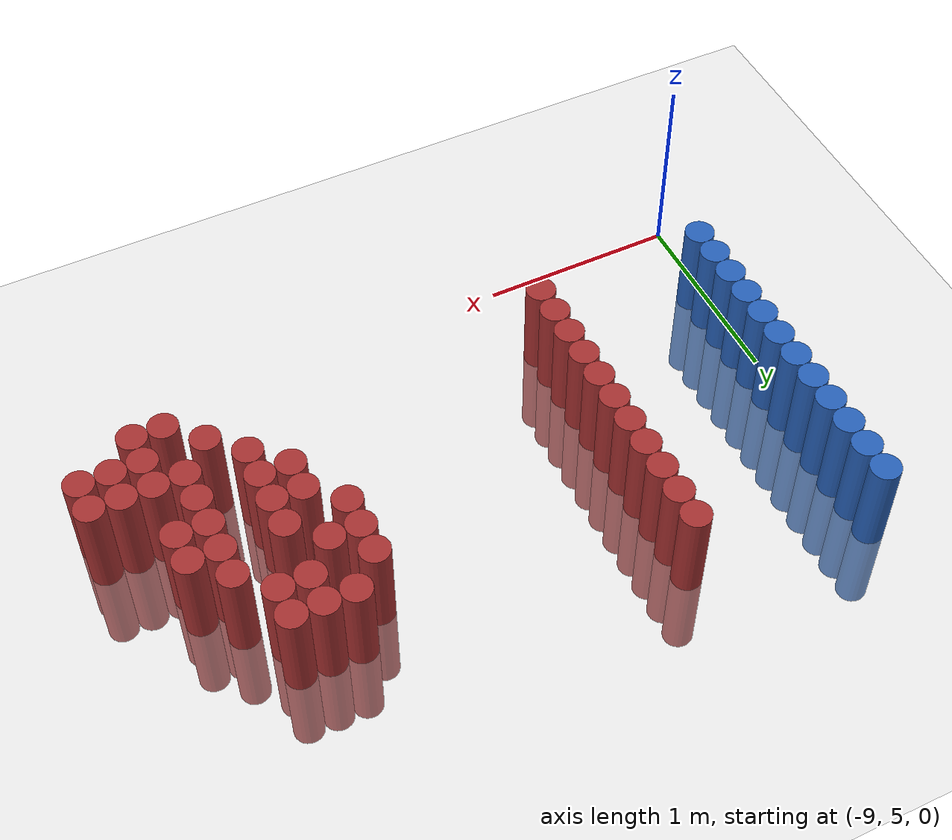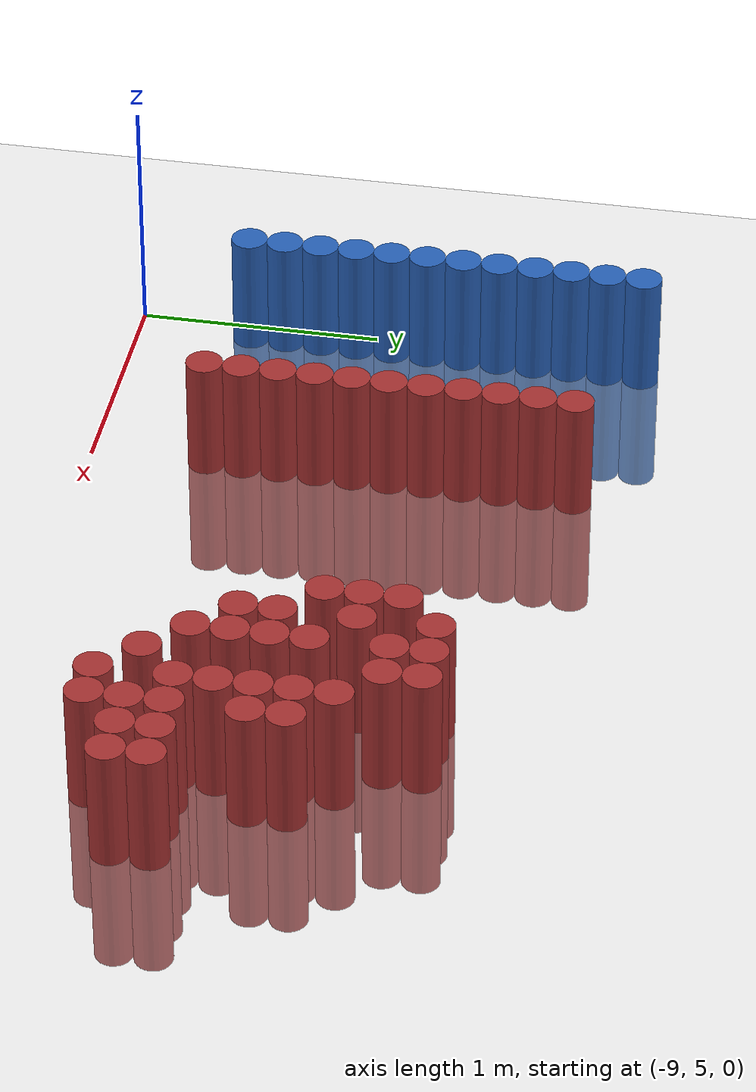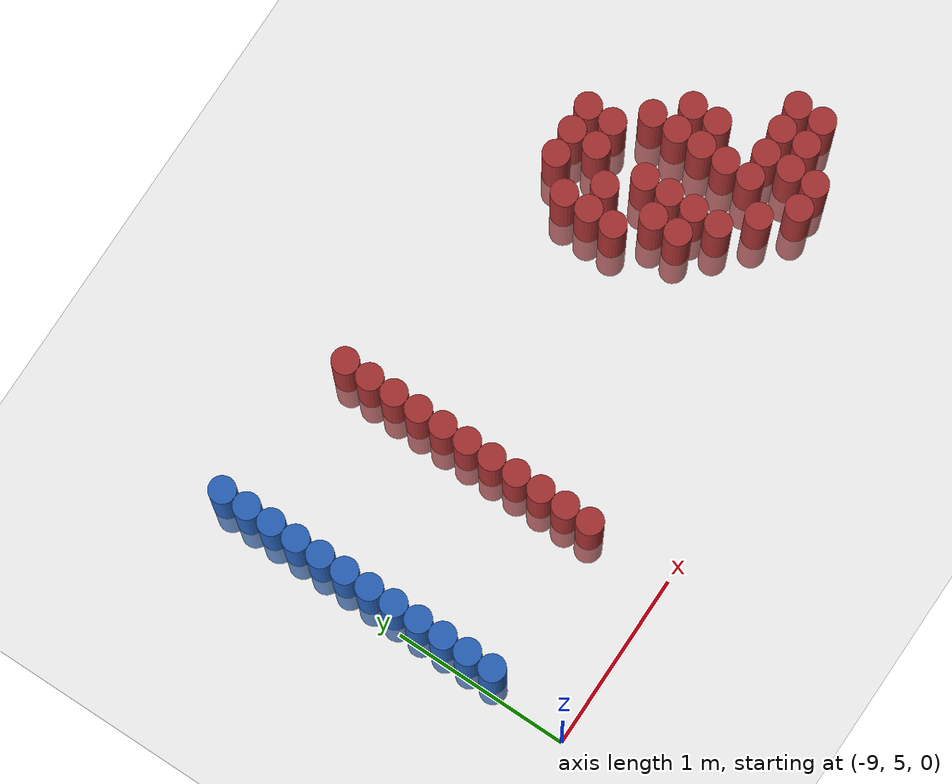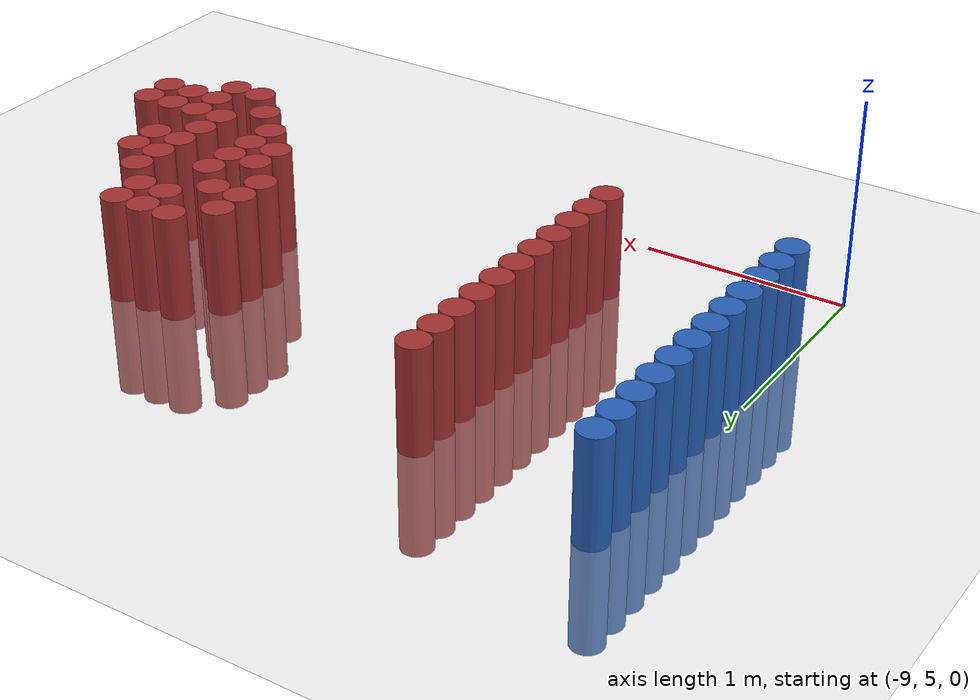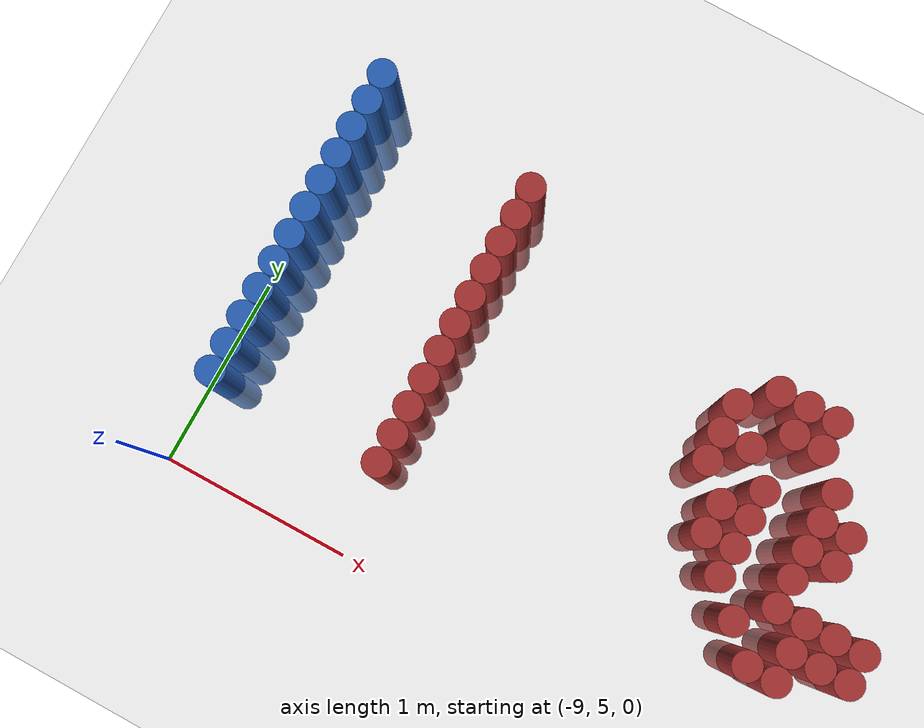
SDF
<sdf version="1.6">
 <world name="default">
  <model name="ground_plane">
   <static>1</static>
   <link name="link">
    <collision name="collision">
     <geometry><plane><normal>0 0 1</normal><size>100 100</size></plane></geometry>
     <surface><friction><ode><mu>100</mu><mu2>50</mu2></ode></friction></surface>
    </collision>
    <visual name="visual">
     <cast_shadows>0</cast_shadows>
     <geometry><plane><normal>0 0 1</normal><size>100 100</size></plane></geometry>
     <material>
      <script><uri>file://media/materials/scripts/gazebo.material</uri><name>Gazebo/Grey</name></script>
     </material>
    </visual>
   </link>
  </model>
  <model name="unit_cylinder_127">
   <static>1</static>
   <pose>-8.925000 5.475000 0.000000 0.000000 0.000000 0.000000</pose>
   <link name="link">
    <inertial>
     <mass>1</mass>
     <inertia><ixx>0.145833</ixx><ixy>0</ixy><ixz>0</ixz><iyy>0.145833</iyy><iyz>0</iyz><izz>0.125</izz></inertia>
    </inertial>
    <collision name="collision">
     <geometry><cylinder><radius>0.075000</radius><length>1</length></cylinder></geometry>
    </collision>
    <visual name="visual">
     <geometry><cylinder><radius>0.075000</radius><length>1</length></cylinder></geometry>
     <material>
      <ambient>0.152000 0.379000 0.720000 1</ambient>
      <diffuse>0.152000 0.379000 0.720000 1</diffuse>
     </material>
     <material>
      <script><name>Gazebo/Grey</name><uri>file://media/materials/scripts/gazebo.material</uri></script>
     </material>
    </visual>
   </link>
  </model>
  <model name="unit_cylinder_128">
   <static>1</static>
   <pose>-8.925000 5.625000 0.000000 0.000000 0.000000 0.000000</pose>
   <link name="link">
    <inertial>
     <mass>1</mass>
     <inertia><ixx>0.145833</ixx><ixy>0</ixy><ixz>0</ixz><iyy>0.145833</iyy><iyz>0</iyz><izz>0.125</izz></inertia>
    </inertial>
    <collision name="collision">
     <geometry><cylinder><radius>0.075000</radius><length>1</length></cylinder></geometry>
    </collision>
    <visual name="visual">
     <geometry><cylinder><radius>0.075000</radius><length>1</length></cylinder></geometry>
     <material>
      <ambient>0.152000 0.379000 0.720000 1</ambient>
      <diffuse>0.152000 0.379000 0.720000 1</diffuse>
     </material>
     <material>
      <script><name>Gazebo/Grey</name><uri>file://media/materials/scripts/gazebo.material</uri></script>
     </material>
    </visual>
   </link>
  </model>
  <model name="unit_cylinder_129">
   <static>1</static>
   <pose>-8.925000 5.775000 0.000000 0.000000 0.000000 0.000000</pose>
   <link name="link">
    <inertial>
     <mass>1</mass>
     <inertia><ixx>0.145833</ixx><ixy>0</ixy><ixz>0</ixz><iyy>0.145833</iyy><iyz>0</iyz><izz>0.125</izz></inertia>
    </inertial>
    <collision name="collision">
     <geometry><cylinder><radius>0.075000</radius><length>1</length></cylinder></geometry>
    </collision>
    <visual name="visual">
     <geometry><cylinder><radius>0.075000</radius><length>1</length></cylinder></geometry>
     <material>
      <ambient>0.152000 0.379000 0.720000 1</ambient>
      <diffuse>0.152000 0.379000 0.720000 1</diffuse>
     </material>
     <material>
      <script><name>Gazebo/Grey</name><uri>file://media/materials/scripts/gazebo.material</uri></script>
     </material>
    </visual>
   </link>
  </model>
  <model name="unit_cylinder_130">
   <static>1</static>
   <pose>-8.925000 5.925000 0.000000 0.000000 0.000000 0.000000</pose>
   <link name="link">
    <inertial>
     <mass>1</mass>
     <inertia><ixx>0.145833</ixx><ixy>0</ixy><ixz>0</ixz><iyy>0.145833</iyy><iyz>0</iyz><izz>0.125</izz></inertia>
    </inertial>
    <collision name="collision">
     <geometry><cylinder><radius>0.075000</radius><length>1</length></cylinder></geometry>
    </collision>
    <visual name="visual">
     <geometry><cylinder><radius>0.075000</radius><length>1</length></cylinder></geometry>
     <material>
      <ambient>0.152000 0.379000 0.720000 1</ambient>
      <diffuse>0.152000 0.379000 0.720000 1</diffuse>
     </material>
     <material>
      <script><name>Gazebo/Grey</name><uri>file://media/materials/scripts/gazebo.material</uri></script>
     </material>
    </visual>
   </link>
  </model>
  <model name="unit_cylinder_131">
   <static>1</static>
   <pose>-8.925000 6.075000 0.000000 0.000000 0.000000 0.000000</pose>
   <link name="link">
    <inertial>
     <mass>1</mass>
     <inertia><ixx>0.145833</ixx><ixy>0</ixy><ixz>0</ixz><iyy>0.145833</iyy><iyz>0</iyz><izz>0.125</izz></inertia>
    </inertial>
    <collision name="collision">
     <geometry><cylinder><radius>0.075000</radius><length>1</length></cylinder></geometry>
    </collision>
    <visual name="visual">
     <geometry><cylinder><radius>0.075000</radius><length>1</length></cylinder></geometry>
     <material>
      <ambient>0.152000 0.379000 0.720000 1</ambient>
      <diffuse>0.152000 0.379000 0.720000 1</diffuse>
     </material>
     <material>
      <script><name>Gazebo/Grey</name><uri>file://media/materials/scripts/gazebo.material</uri></script>
     </material>
    </visual>
   </link>
  </model>
  <model name="unit_cylinder_132">
   <static>1</static>
   <pose>-8.925000 6.225000 0.000000 0.000000 0.000000 0.000000</pose>
   <link name="link">
    <inertial>
     <mass>1</mass>
     <inertia><ixx>0.145833</ixx><ixy>0</ixy><ixz>0</ixz><iyy>0.145833</iyy><iyz>0</iyz><izz>0.125</izz></inertia>
    </inertial>
    <collision name="collision">
     <geometry><cylinder><radius>0.075000</radius><length>1</length></cylinder></geometry>
    </collision>
    <visual name="visual">
     <geometry><cylinder><radius>0.075000</radius><length>1</length></cylinder></geometry>
     <material>
      <ambient>0.152000 0.379000 0.720000 1</ambient>
      <diffuse>0.152000 0.379000 0.720000 1</diffuse>
     </material>
     <material>
      <script><name>Gazebo/Grey</name><uri>file://media/materials/scripts/gazebo.material</uri></script>
     </material>
    </visual>
   </link>
  </model>
  <model name="unit_cylinder_133">
   <static>1</static>
   <pose>-8.925000 6.375000 0.000000 0.000000 0.000000 0.000000</pose>
   <link name="link">
    <inertial>
     <mass>1</mass>
     <inertia><ixx>0.145833</ixx><ixy>0</ixy><ixz>0</ixz><iyy>0.145833</iyy><iyz>0</iyz><izz>0.125</izz></inertia>
    </inertial>
    <collision name="collision">
     <geometry><cylinder><radius>0.075000</radius><length>1</length></cylinder></geometry>
    </collision>
    <visual name="visual">
     <geometry><cylinder><radius>0.075000</radius><length>1</length></cylinder></geometry>
     <material>
      <ambient>0.152000 0.379000 0.720000 1</ambient>
      <diffuse>0.152000 0.379000 0.720000 1</diffuse>
     </material>
     <material>
      <script><name>Gazebo/Grey</name><uri>file://media/materials/scripts/gazebo.material</uri></script>
     </material>
    </visual>
   </link>
  </model>
  <model name="unit_cylinder_134">
   <static>1</static>
   <pose>-8.925000 6.525000 0.000000 0.000000 0.000000 0.000000</pose>
   <link name="link">
    <inertial>
     <mass>1</mass>
     <inertia><ixx>0.145833</ixx><ixy>0</ixy><ixz>0</ixz><iyy>0.145833</iyy><iyz>0</iyz><izz>0.125</izz></inertia>
    </inertial>
    <collision name="collision">
     <geometry><cylinder><radius>0.075000</radius><length>1</length></cylinder></geometry>
    </collision>
    <visual name="visual">
     <geometry><cylinder><radius>0.075000</radius><length>1</length></cylinder></geometry>
     <material>
      <ambient>0.152000 0.379000 0.720000 1</ambient>
      <diffuse>0.152000 0.379000 0.720000 1</diffuse>
     </material>
     <material>
      <script><name>Gazebo/Grey</name><uri>file://media/materials/scripts/gazebo.material</uri></script>
     </material>
    </visual>
   </link>
  </model>
  <model name="unit_cylinder_135">
   <static>1</static>
   <pose>-8.925000 6.675000 0.000000 0.000000 0.000000 0.000000</pose>
   <link name="link">
    <inertial>
     <mass>1</mass>
     <inertia><ixx>0.145833</ixx><ixy>0</ixy><ixz>0</ixz><iyy>0.145833</iyy><iyz>0</iyz><izz>0.125</izz></inertia>
    </inertial>
    <collision name="collision">
     <geometry><cylinder><radius>0.075000</radius><length>1</length></cylinder></geometry>
    </collision>
    <visual name="visual">
     <geometry><cylinder><radius>0.075000</radius><length>1</length></cylinder></geometry>
     <material>
      <ambient>0.152000 0.379000 0.720000 1</ambient>
      <diffuse>0.152000 0.379000 0.720000 1</diffuse>
     </material>
     <material>
      <script><name>Gazebo/Grey</name><uri>file://media/materials/scripts/gazebo.material</uri></script>
     </material>
    </visual>
   </link>
  </model>
  <model name="unit_cylinder_136">
   <static>1</static>
   <pose>-8.925000 6.825000 0.000000 0.000000 0.000000 0.000000</pose>
   <link name="link">
    <inertial>
     <mass>1</mass>
     <inertia><ixx>0.145833</ixx><ixy>0</ixy><ixz>0</ixz><iyy>0.145833</iyy><iyz>0</iyz><izz>0.125</izz></inertia>
    </inertial>
    <collision name="collision">
     <geometry><cylinder><radius>0.075000</radius><length>1</length></cylinder></geometry>
    </collision>
    <visual name="visual">
     <geometry><cylinder><radius>0.075000</radius><length>1</length></cylinder></geometry>
     <material>
      <ambient>0.152000 0.379000 0.720000 1</ambient>
      <diffuse>0.152000 0.379000 0.720000 1</diffuse>
     </material>
     <material>
      <script><name>Gazebo/Grey</name><uri>file://media/materials/scripts/gazebo.material</uri></script>
     </material>
    </visual>
   </link>
  </model>
  <model name="unit_cylinder_137">
   <static>1</static>
   <pose>-8.925000 6.975000 0.000000 0.000000 0.000000 0.000000</pose>
   <link name="link">
    <inertial>
     <mass>1</mass>
     <inertia><ixx>0.145833</ixx><ixy>0</ixy><ixz>0</ixz><iyy>0.145833</iyy><iyz>0</iyz><izz>0.125</izz></inertia>
    </inertial>
    <collision name="collision">
     <geometry><cylinder><radius>0.075000</radius><length>1</length></cylinder></geometry>
    </collision>
    <visual name="visual">
     <geometry><cylinder><radius>0.075000</radius><length>1</length></cylinder></geometry>
     <material>
      <ambient>0.152000 0.379000 0.720000 1</ambient>
      <diffuse>0.152000 0.379000 0.720000 1</diffuse>
     </material>
     <material>
      <script><name>Gazebo/Grey</name><uri>file://media/materials/scripts/gazebo.material</uri></script>
     </material>
    </visual>
   </link>
  </model>
  <model name="unit_cylinder_138">
   <static>1</static>
   <pose>-8.925000 7.125000 0.000000 0.000000 0.000000 0.000000</pose>
   <link name="link">
    <inertial>
     <mass>1</mass>
     <inertia><ixx>0.145833</ixx><ixy>0</ixy><ixz>0</ixz><iyy>0.145833</iyy><iyz>0</iyz><izz>0.125</izz></inertia>
    </inertial>
    <collision name="collision">
     <geometry><cylinder><radius>0.075000</radius><length>1</length></cylinder></geometry>
    </collision>
    <visual name="visual">
     <geometry><cylinder><radius>0.075000</radius><length>1</length></cylinder></geometry>
     <material>
      <ambient>0.152000 0.379000 0.720000 1</ambient>
      <diffuse>0.152000 0.379000 0.720000 1</diffuse>
     </material>
     <material>
      <script><name>Gazebo/Grey</name><uri>file://media/materials/scripts/gazebo.material</uri></script>
     </material>
    </visual>
   </link>
  </model>
  <model name="unit_cylinder_183">
   <static>1</static>
   <pose>-8.025000 5.475000 0.000000 0.000000 0.000000 0.000000</pose>
   <link name="link">
    <inertial>
     <mass>1</mass>
     <inertia><ixx>0.145833</ixx><ixy>0</ixy><ixz>0</ixz><iyy>0.145833</iyy><iyz>0</iyz><izz>0.125</izz></inertia>
    </inertial>
    <collision name="collision">
     <geometry><cylinder><radius>0.075000</radius><length>1</length></cylinder></geometry>
    </collision>
    <visual name="visual">
     <geometry><cylinder><radius>0.075000</radius><length>1</length></cylinder></geometry>
     <material>
      <ambient>0.648000 0.192000 0.192000 1</ambient>
      <diffuse>0.648000 0.192000 0.192000 1</diffuse>
     </material>
     <material>
      <script><name>Gazebo/Grey</name><uri>file://media/materials/scripts/gazebo.material</uri></script>
     </material>
    </visual>
   </link>
  </model>
  <model name="unit_cylinder_184">
   <static>1</static>
   <pose>-8.025000 5.625000 0.000000 0.000000 0.000000 0.000000</pose>
   <link name="link">
    <inertial>
     <mass>1</mass>
     <inertia><ixx>0.145833</ixx><ixy>0</ixy><ixz>0</ixz><iyy>0.145833</iyy><iyz>0</iyz><izz>0.125</izz></inertia>
    </inertial>
    <collision name="collision">
     <geometry><cylinder><radius>0.075000</radius><length>1</length></cylinder></geometry>
    </collision>
    <visual name="visual">
     <geometry><cylinder><radius>0.075000</radius><length>1</length></cylinder></geometry>
     <material>
      <ambient>0.648000 0.192000 0.192000 1</ambient>
      <diffuse>0.648000 0.192000 0.192000 1</diffuse>
     </material>
     <material>
      <script><name>Gazebo/Grey</name><uri>file://media/materials/scripts/gazebo.material</uri></script>
     </material>
    </visual>
   </link>
  </model>
  <model name="unit_cylinder_185">
   <static>1</static>
   <pose>-8.025000 5.775000 0.000000 0.000000 0.000000 0.000000</pose>
   <link name="link">
    <inertial>
     <mass>1</mass>
     <inertia><ixx>0.145833</ixx><ixy>0</ixy><ixz>0</ixz><iyy>0.145833</iyy><iyz>0</iyz><izz>0.125</izz></inertia>
    </inertial>
    <collision name="collision">
     <geometry><cylinder><radius>0.075000</radius><length>1</length></cylinder></geometry>
    </collision>
    <visual name="visual">
     <geometry><cylinder><radius>0.075000</radius><length>1</length></cylinder></geometry>
     <material>
      <ambient>0.648000 0.192000 0.192000 1</ambient>
      <diffuse>0.648000 0.192000 0.192000 1</diffuse>
     </material>
     <material>
      <script><name>Gazebo/Grey</name><uri>file://media/materials/scripts/gazebo.material</uri></script>
     </material>
    </visual>
   </link>
  </model>
  <model name="unit_cylinder_186">
   <static>1</static>
   <pose>-8.025000 5.925000 0.000000 0.000000 0.000000 0.000000</pose>
   <link name="link">
    <inertial>
     <mass>1</mass>
     <inertia><ixx>0.145833</ixx><ixy>0</ixy><ixz>0</ixz><iyy>0.145833</iyy><iyz>0</iyz><izz>0.125</izz></inertia>
    </inertial>
    <collision name="collision">
     <geometry><cylinder><radius>0.075000</radius><length>1</length></cylinder></geometry>
    </collision>
    <visual name="visual">
     <geometry><cylinder><radius>0.075000</radius><length>1</length></cylinder></geometry>
     <material>
      <ambient>0.648000 0.192000 0.192000 1</ambient>
      <diffuse>0.648000 0.192000 0.192000 1</diffuse>
     </material>
     <material>
      <script><name>Gazebo/Grey</name><uri>file://media/materials/scripts/gazebo.material</uri></script>
     </material>
    </visual>
   </link>
  </model>
  <model name="unit_cylinder_187">
   <static>1</static>
   <pose>-8.025000 6.075000 0.000000 0.000000 0.000000 0.000000</pose>
   <link name="link">
    <inertial>
     <mass>1</mass>
     <inertia><ixx>0.145833</ixx><ixy>0</ixy><ixz>0</ixz><iyy>0.145833</iyy><iyz>0</iyz><izz>0.125</izz></inertia>
    </inertial>
    <collision name="collision">
     <geometry><cylinder><radius>0.075000</radius><length>1</length></cylinder></geometry>
    </collision>
    <visual name="visual">
     <geometry><cylinder><radius>0.075000</radius><length>1</length></cylinder></geometry>
     <material>
      <ambient>0.648000 0.192000 0.192000 1</ambient>
      <diffuse>0.648000 0.192000 0.192000 1</diffuse>
     </material>
     <material>
      <script><name>Gazebo/Grey</name><uri>file://media/materials/scripts/gazebo.material</uri></script>
     </material>
    </visual>
   </link>
  </model>
  <model name="unit_cylinder_188">
   <static>1</static>
   <pose>-8.025000 6.225000 0.000000 0.000000 0.000000 0.000000</pose>
   <link name="link">
    <inertial>
     <mass>1</mass>
     <inertia><ixx>0.145833</ixx><ixy>0</ixy><ixz>0</ixz><iyy>0.145833</iyy><iyz>0</iyz><izz>0.125</izz></inertia>
    </inertial>
    <collision name="collision">
     <geometry><cylinder><radius>0.075000</radius><length>1</length></cylinder></geometry>
    </collision>
    <visual name="visual">
     <geometry><cylinder><radius>0.075000</radius><length>1</length></cylinder></geometry>
     <material>
      <ambient>0.648000 0.192000 0.192000 1</ambient>
      <diffuse>0.648000 0.192000 0.192000 1</diffuse>
     </material>
     <material>
      <script><name>Gazebo/Grey</name><uri>file://media/materials/scripts/gazebo.material</uri></script>
     </material>
    </visual>
   </link>
  </model>
  <model name="unit_cylinder_189">
   <static>1</static>
   <pose>-8.025000 6.375000 0.000000 0.000000 0.000000 0.000000</pose>
   <link name="link">
    <inertial>
     <mass>1</mass>
     <inertia><ixx>0.145833</ixx><ixy>0</ixy><ixz>0</ixz><iyy>0.145833</iyy><iyz>0</iyz><izz>0.125</izz></inertia>
    </inertial>
    <collision name="collision">
     <geometry><cylinder><radius>0.075000</radius><length>1</length></cylinder></geometry>
    </collision>
    <visual name="visual">
     <geometry><cylinder><radius>0.075000</radius><length>1</length></cylinder></geometry>
     <material>
      <ambient>0.648000 0.192000 0.192000 1</ambient>
      <diffuse>0.648000 0.192000 0.192000 1</diffuse>
     </material>
     <material>
      <script><name>Gazebo/Grey</name><uri>file://media/materials/scripts/gazebo.material</uri></script>
     </material>
    </visual>
   </link>
  </model>
  <model name="unit_cylinder_190">
   <static>1</static>
   <pose>-8.025000 6.525000 0.000000 0.000000 0.000000 0.000000</pose>
   <link name="link">
    <inertial>
     <mass>1</mass>
     <inertia><ixx>0.145833</ixx><ixy>0</ixy><ixz>0</ixz><iyy>0.145833</iyy><iyz>0</iyz><izz>0.125</izz></inertia>
    </inertial>
    <collision name="collision">
     <geometry><cylinder><radius>0.075000</radius><length>1</length></cylinder></geometry>
    </collision>
    <visual name="visual">
     <geometry><cylinder><radius>0.075000</radius><length>1</length></cylinder></geometry>
     <material>
      <ambient>0.648000 0.192000 0.192000 1</ambient>
      <diffuse>0.648000 0.192000 0.192000 1</diffuse>
     </material>
     <material>
      <script><name>Gazebo/Grey</name><uri>file://media/materials/scripts/gazebo.material</uri></script>
     </material>
    </visual>
   </link>
  </model>
  <model name="unit_cylinder_191">
   <static>1</static>
   <pose>-8.025000 6.675000 0.000000 0.000000 0.000000 0.000000</pose>
   <link name="link">
    <inertial>
     <mass>1</mass>
     <inertia><ixx>0.145833</ixx><ixy>0</ixy><ixz>0</ixz><iyy>0.145833</iyy><iyz>0</iyz><izz>0.125</izz></inertia>
    </inertial>
    <collision name="collision">
     <geometry><cylinder><radius>0.075000</radius><length>1</length></cylinder></geometry>
    </collision>
    <visual name="visual">
     <geometry><cylinder><radius>0.075000</radius><length>1</length></cylinder></geometry>
     <material>
      <ambient>0.648000 0.192000 0.192000 1</ambient>
      <diffuse>0.648000 0.192000 0.192000 1</diffuse>
     </material>
     <material>
      <script><name>Gazebo/Grey</name><uri>file://media/materials/scripts/gazebo.material</uri></script>
     </material>
    </visual>
   </link>
  </model>
  <model name="unit_cylinder_192">
   <static>1</static>
   <pose>-8.025000 6.825000 0.000000 0.000000 0.000000 0.000000</pose>
   <link name="link">
    <inertial>
     <mass>1</mass>
     <inertia><ixx>0.145833</ixx><ixy>0</ixy><ixz>0</ixz><iyy>0.145833</iyy><iyz>0</iyz><izz>0.125</izz></inertia>
    </inertial>
    <collision name="collision">
     <geometry><cylinder><radius>0.075000</radius><length>1</length></cylinder></geometry>
    </collision>
    <visual name="visual">
     <geometry><cylinder><radius>0.075000</radius><length>1</length></cylinder></geometry>
     <material>
      <ambient>0.648000 0.192000 0.192000 1</ambient>
      <diffuse>0.648000 0.192000 0.192000 1</diffuse>
     </material>
     <material>
      <script><name>Gazebo/Grey</name><uri>file://media/materials/scripts/gazebo.material</uri></script>
     </material>
    </visual>
   </link>
  </model>
  <model name="unit_cylinder_193">
   <static>1</static>
   <pose>-8.025000 6.975000 0.000000 0.000000 0.000000 0.000000</pose>
   <link name="link">
    <inertial>
     <mass>1</mass>
     <inertia><ixx>0.145833</ixx><ixy>0</ixy><ixz>0</ixz><iyy>0.145833</iyy><iyz>0</iyz><izz>0.125</izz></inertia>
    </inertial>
    <collision name="collision">
     <geometry><cylinder><radius>0.075000</radius><length>1</length></cylinder></geometry>
    </collision>
    <visual name="visual">
     <geometry><cylinder><radius>0.075000</radius><length>1</length></cylinder></geometry>
     <material>
      <ambient>0.648000 0.192000 0.192000 1</ambient>
      <diffuse>0.648000 0.192000 0.192000 1</diffuse>
     </material>
     <material>
      <script><name>Gazebo/Grey</name><uri>file://media/materials/scripts/gazebo.material</uri></script>
     </material>
    </visual>
   </link>
  </model>
  <model name="unit_cylinder_199">
   <static>1</static>
   <pose>-6.675000 6.225000 0.000000 0.000000 0.000000 0.000000</pose>
   <link name="link">
    <inertial>
     <mass>1</mass>
     <inertia><ixx>0.145833</ixx><ixy>0</ixy><ixz>0</ixz><iyy>0.145833</iyy><iyz>0</iyz><izz>0.125</izz></inertia>
    </inertial>
    <collision name="collision">
     <geometry><cylinder><radius>0.075000</radius><length>1</length></cylinder></geometry>
    </collision>
    <visual name="visual">
     <geometry><cylinder><radius>0.075000</radius><length>1</length></cylinder></geometry>
     <material>
      <ambient>0.648000 0.192000 0.192000 1</ambient>
      <diffuse>0.648000 0.192000 0.192000 1</diffuse>
     </material>
     <material>
      <script><name>Gazebo/Grey</name><uri>file://media/materials/scripts/gazebo.material</uri></script>
     </material>
    </visual>
   </link>
  </model>
  <model name="unit_cylinder_200">
   <static>1</static>
   <pose>-6.675000 6.375000 0.000000 0.000000 0.000000 0.000000</pose>
   <link name="link">
    <inertial>
     <mass>1</mass>
     <inertia><ixx>0.145833</ixx><ixy>0</ixy><ixz>0</ixz><iyy>0.145833</iyy><iyz>0</iyz><izz>0.125</izz></inertia>
    </inertial>
    <collision name="collision">
     <geometry><cylinder><radius>0.075000</radius><length>1</length></cylinder></geometry>
    </collision>
    <visual name="visual">
     <geometry><cylinder><radius>0.075000</radius><length>1</length></cylinder></geometry>
     <material>
      <ambient>0.648000 0.192000 0.192000 1</ambient>
      <diffuse>0.648000 0.192000 0.192000 1</diffuse>
     </material>
     <material>
      <script><name>Gazebo/Grey</name><uri>file://media/materials/scripts/gazebo.material</uri></script>
     </material>
    </visual>
   </link>
  </model>
  <model name="unit_cylinder_201">
   <static>1</static>
   <pose>-6.675000 6.525000 0.000000 0.000000 0.000000 0.000000</pose>
   <link name="link">
    <inertial>
     <mass>1</mass>
     <inertia><ixx>0.145833</ixx><ixy>0</ixy><ixz>0</ixz><iyy>0.145833</iyy><iyz>0</iyz><izz>0.125</izz></inertia>
    </inertial>
    <collision name="collision">
     <geometry><cylinder><radius>0.075000</radius><length>1</length></cylinder></geometry>
    </collision>
    <visual name="visual">
     <geometry><cylinder><radius>0.075000</radius><length>1</length></cylinder></geometry>
     <material>
      <ambient>0.648000 0.192000 0.192000 1</ambient>
      <diffuse>0.648000 0.192000 0.192000 1</diffuse>
     </material>
     <material>
      <script><name>Gazebo/Grey</name><uri>file://media/materials/scripts/gazebo.material</uri></script>
     </material>
    </visual>
   </link>
  </model>
  <model name="unit_cylinder_202">
   <static>1</static>
   <pose>-6.525000 5.925000 0.000000 0.000000 0.000000 0.000000</pose>
   <link name="link">
    <inertial>
     <mass>1</mass>
     <inertia><ixx>0.145833</ixx><ixy>0</ixy><ixz>0</ixz><iyy>0.145833</iyy><iyz>0</iyz><izz>0.125</izz></inertia>
    </inertial>
    <collision name="collision">
     <geometry><cylinder><radius>0.075000</radius><length>1</length></cylinder></geometry>
    </collision>
    <visual name="visual">
     <geometry><cylinder><radius>0.075000</radius><length>1</length></cylinder></geometry>
     <material>
      <ambient>0.648000 0.192000 0.192000 1</ambient>
      <diffuse>0.648000 0.192000 0.192000 1</diffuse>
     </material>
     <material>
      <script><name>Gazebo/Grey</name><uri>file://media/materials/scripts/gazebo.material</uri></script>
     </material>
    </visual>
   </link>
  </model>
  <model name="unit_cylinder_203">
   <static>1</static>
   <pose>-6.525000 6.075000 0.000000 0.000000 0.000000 0.000000</pose>
   <link name="link">
    <inertial>
     <mass>1</mass>
     <inertia><ixx>0.145833</ixx><ixy>0</ixy><ixz>0</ixz><iyy>0.145833</iyy><iyz>0</iyz><izz>0.125</izz></inertia>
    </inertial>
    <collision name="collision">
     <geometry><cylinder><radius>0.075000</radius><length>1</length></cylinder></geometry>
    </collision>
    <visual name="visual">
     <geometry><cylinder><radius>0.075000</radius><length>1</length></cylinder></geometry>
     <material>
      <ambient>0.648000 0.192000 0.192000 1</ambient>
      <diffuse>0.648000 0.192000 0.192000 1</diffuse>
     </material>
     <material>
      <script><name>Gazebo/Grey</name><uri>file://media/materials/scripts/gazebo.material</uri></script>
     </material>
    </visual>
   </link>
  </model>
  <model name="unit_cylinder_204">
   <static>1</static>
   <pose>-6.525000 6.375000 0.000000 0.000000 0.000000 0.000000</pose>
   <link name="link">
    <inertial>
     <mass>1</mass>
     <inertia><ixx>0.145833</ixx><ixy>0</ixy><ixz>0</ixz><iyy>0.145833</iyy><iyz>0</iyz><izz>0.125</izz></inertia>
    </inertial>
    <collision name="collision">
     <geometry><cylinder><radius>0.075000</radius><length>1</length></cylinder></geometry>
    </collision>
    <visual name="visual">
     <geometry><cylinder><radius>0.075000</radius><length>1</length></cylinder></geometry>
     <material>
      <ambient>0.648000 0.192000 0.192000 1</ambient>
      <diffuse>0.648000 0.192000 0.192000 1</diffuse>
     </material>
     <material>
      <script><name>Gazebo/Grey</name><uri>file://media/materials/scripts/gazebo.material</uri></script>
     </material>
    </visual>
   </link>
  </model>
  <model name="unit_cylinder_205">
   <static>1</static>
   <pose>-6.525000 6.675000 0.000000 0.000000 0.000000 0.000000</pose>
   <link name="link">
    <inertial>
     <mass>1</mass>
     <inertia><ixx>0.145833</ixx><ixy>0</ixy><ixz>0</ixz><iyy>0.145833</iyy><iyz>0</iyz><izz>0.125</izz></inertia>
    </inertial>
    <collision name="collision">
     <geometry><cylinder><radius>0.075000</radius><length>1</length></cylinder></geometry>
    </collision>
    <visual name="visual">
     <geometry><cylinder><radius>0.075000</radius><length>1</length></cylinder></geometry>
     <material>
      <ambient>0.648000 0.192000 0.192000 1</ambient>
      <diffuse>0.648000 0.192000 0.192000 1</diffuse>
     </material>
     <material>
      <script><name>Gazebo/Grey</name><uri>file://media/materials/scripts/gazebo.material</uri></script>
     </material>
    </visual>
   </link>
  </model>
  <model name="unit_cylinder_206">
   <static>1</static>
   <pose>-6.375000 5.775000 0.000000 0.000000 0.000000 0.000000</pose>
   <link name="link">
    <inertial>
     <mass>1</mass>
     <inertia><ixx>0.145833</ixx><ixy>0</ixy><ixz>0</ixz><iyy>0.145833</iyy><iyz>0</iyz><izz>0.125</izz></inertia>
    </inertial>
    <collision name="collision">
     <geometry><cylinder><radius>0.075000</radius><length>1</length></cylinder></geometry>
    </collision>
    <visual name="visual">
     <geometry><cylinder><radius>0.075000</radius><length>1</length></cylinder></geometry>
     <material>
      <ambient>0.648000 0.192000 0.192000 1</ambient>
      <diffuse>0.648000 0.192000 0.192000 1</diffuse>
     </material>
     <material>
      <script><name>Gazebo/Grey</name><uri>file://media/materials/scripts/gazebo.material</uri></script>
     </material>
    </visual>
   </link>
  </model>
  <model name="unit_cylinder_207">
   <static>1</static>
   <pose>-6.375000 5.925000 0.000000 0.000000 0.000000 0.000000</pose>
   <link name="link">
    <inertial>
     <mass>1</mass>
     <inertia><ixx>0.145833</ixx><ixy>0</ixy><ixz>0</ixz><iyy>0.145833</iyy><iyz>0</iyz><izz>0.125</izz></inertia>
    </inertial>
    <collision name="collision">
     <geometry><cylinder><radius>0.075000</radius><length>1</length></cylinder></geometry>
    </collision>
    <visual name="visual">
     <geometry><cylinder><radius>0.075000</radius><length>1</length></cylinder></geometry>
     <material>
      <ambient>0.648000 0.192000 0.192000 1</ambient>
      <diffuse>0.648000 0.192000 0.192000 1</diffuse>
     </material>
     <material>
      <script><name>Gazebo/Grey</name><uri>file://media/materials/scripts/gazebo.material</uri></script>
     </material>
    </visual>
   </link>
  </model>
  <model name="unit_cylinder_208">
   <static>1</static>
   <pose>-6.375000 6.075000 0.000000 0.000000 0.000000 0.000000</pose>
   <link name="link">
    <inertial>
     <mass>1</mass>
     <inertia><ixx>0.145833</ixx><ixy>0</ixy><ixz>0</ixz><iyy>0.145833</iyy><iyz>0</iyz><izz>0.125</izz></inertia>
    </inertial>
    <collision name="collision">
     <geometry><cylinder><radius>0.075000</radius><length>1</length></cylinder></geometry>
    </collision>
    <visual name="visual">
     <geometry><cylinder><radius>0.075000</radius><length>1</length></cylinder></geometry>
     <material>
      <ambient>0.648000 0.192000 0.192000 1</ambient>
      <diffuse>0.648000 0.192000 0.192000 1</diffuse>
     </material>
     <material>
      <script><name>Gazebo/Grey</name><uri>file://media/materials/scripts/gazebo.material</uri></script>
     </material>
    </visual>
   </link>
  </model>
  <model name="unit_cylinder_209">
   <static>1</static>
   <pose>-6.375000 6.225000 0.000000 0.000000 0.000000 0.000000</pose>
   <link name="link">
    <inertial>
     <mass>1</mass>
     <inertia><ixx>0.145833</ixx><ixy>0</ixy><ixz>0</ixz><iyy>0.145833</iyy><iyz>0</iyz><izz>0.125</izz></inertia>
    </inertial>
    <collision name="collision">
     <geometry><cylinder><radius>0.075000</radius><length>1</length></cylinder></geometry>
    </collision>
    <visual name="visual">
     <geometry><cylinder><radius>0.075000</radius><length>1</length></cylinder></geometry>
     <material>
      <ambient>0.648000 0.192000 0.192000 1</ambient>
      <diffuse>0.648000 0.192000 0.192000 1</diffuse>
     </material>
     <material>
      <script><name>Gazebo/Grey</name><uri>file://media/materials/scripts/gazebo.material</uri></script>
     </material>
    </visual>
   </link>
  </model>
  <model name="unit_cylinder_210">
   <static>1</static>
   <pose>-6.375000 6.525000 0.000000 0.000000 0.000000 0.000000</pose>
   <link name="link">
    <inertial>
     <mass>1</mass>
     <inertia><ixx>0.145833</ixx><ixy>0</ixy><ixz>0</ixz><iyy>0.145833</iyy><iyz>0</iyz><izz>0.125</izz></inertia>
    </inertial>
    <collision name="collision">
     <geometry><cylinder><radius>0.075000</radius><length>1</length></cylinder></geometry>
    </collision>
    <visual name="visual">
     <geometry><cylinder><radius>0.075000</radius><length>1</length></cylinder></geometry>
     <material>
      <ambient>0.648000 0.192000 0.192000 1</ambient>
      <diffuse>0.648000 0.192000 0.192000 1</diffuse>
     </material>
     <material>
      <script><name>Gazebo/Grey</name><uri>file://media/materials/scripts/gazebo.material</uri></script>
     </material>
    </visual>
   </link>
  </model>
  <model name="unit_cylinder_211">
   <static>1</static>
   <pose>-6.375000 6.675000 0.000000 0.000000 0.000000 0.000000</pose>
   <link name="link">
    <inertial>
     <mass>1</mass>
     <inertia><ixx>0.145833</ixx><ixy>0</ixy><ixz>0</ixz><iyy>0.145833</iyy><iyz>0</iyz><izz>0.125</izz></inertia>
    </inertial>
    <collision name="collision">
     <geometry><cylinder><radius>0.075000</radius><length>1</length></cylinder></geometry>
    </collision>
    <visual name="visual">
     <geometry><cylinder><radius>0.075000</radius><length>1</length></cylinder></geometry>
     <material>
      <ambient>0.648000 0.192000 0.192000 1</ambient>
      <diffuse>0.648000 0.192000 0.192000 1</diffuse>
     </material>
     <material>
      <script><name>Gazebo/Grey</name><uri>file://media/materials/scripts/gazebo.material</uri></script>
     </material>
    </visual>
   </link>
  </model>
  <model name="unit_cylinder_212">
   <static>1</static>
   <pose>-6.225000 5.625000 0.000000 0.000000 0.000000 0.000000</pose>
   <link name="link">
    <inertial>
     <mass>1</mass>
     <inertia><ixx>0.145833</ixx><ixy>0</ixy><ixz>0</ixz><iyy>0.145833</iyy><iyz>0</iyz><izz>0.125</izz></inertia>
    </inertial>
    <collision name="collision">
     <geometry><cylinder><radius>0.075000</radius><length>1</length></cylinder></geometry>
    </collision>
    <visual name="visual">
     <geometry><cylinder><radius>0.075000</radius><length>1</length></cylinder></geometry>
     <material>
      <ambient>0.648000 0.192000 0.192000 1</ambient>
      <diffuse>0.648000 0.192000 0.192000 1</diffuse>
     </material>
     <material>
      <script><name>Gazebo/Grey</name><uri>file://media/materials/scripts/gazebo.material</uri></script>
     </material>
    </visual>
   </link>
  </model>
  <model name="unit_cylinder_213">
   <static>1</static>
   <pose>-6.225000 6.525000 0.000000 0.000000 0.000000 0.000000</pose>
   <link name="link">
    <inertial>
     <mass>1</mass>
     <inertia><ixx>0.145833</ixx><ixy>0</ixy><ixz>0</ixz><iyy>0.145833</iyy><iyz>0</iyz><izz>0.125</izz></inertia>
    </inertial>
    <collision name="collision">
     <geometry><cylinder><radius>0.075000</radius><length>1</length></cylinder></geometry>
    </collision>
    <visual name="visual">
     <geometry><cylinder><radius>0.075000</radius><length>1</length></cylinder></geometry>
     <material>
      <ambient>0.648000 0.192000 0.192000 1</ambient>
      <diffuse>0.648000 0.192000 0.192000 1</diffuse>
     </material>
     <material>
      <script><name>Gazebo/Grey</name><uri>file://media/materials/scripts/gazebo.material</uri></script>
     </material>
    </visual>
   </link>
  </model>
  <model name="unit_cylinder_214">
   <static>1</static>
   <pose>-6.225000 6.675000 0.000000 0.000000 0.000000 0.000000</pose>
   <link name="link">
    <inertial>
     <mass>1</mass>
     <inertia><ixx>0.145833</ixx><ixy>0</ixy><ixz>0</ixz><iyy>0.145833</iyy><iyz>0</iyz><izz>0.125</izz></inertia>
    </inertial>
    <collision name="collision">
     <geometry><cylinder><radius>0.075000</radius><length>1</length></cylinder></geometry>
    </collision>
    <visual name="visual">
     <geometry><cylinder><radius>0.075000</radius><length>1</length></cylinder></geometry>
     <material>
      <ambient>0.648000 0.192000 0.192000 1</ambient>
      <diffuse>0.648000 0.192000 0.192000 1</diffuse>
     </material>
     <material>
      <script><name>Gazebo/Grey</name><uri>file://media/materials/scripts/gazebo.material</uri></script>
     </material>
    </visual>
   </link>
  </model>
  <model name="unit_cylinder_215">
   <static>1</static>
   <pose>-6.075000 5.475000 0.000000 0.000000 0.000000 0.000000</pose>
   <link name="link">
    <inertial>
     <mass>1</mass>
     <inertia><ixx>0.145833</ixx><ixy>0</ixy><ixz>0</ixz><iyy>0.145833</iyy><iyz>0</iyz><izz>0.125</izz></inertia>
    </inertial>
    <collision name="collision">
     <geometry><cylinder><radius>0.075000</radius><length>1</length></cylinder></geometry>
    </collision>
    <visual name="visual">
     <geometry><cylinder><radius>0.075000</radius><length>1</length></cylinder></geometry>
     <material>
      <ambient>0.648000 0.192000 0.192000 1</ambient>
      <diffuse>0.648000 0.192000 0.192000 1</diffuse>
     </material>
     <material>
      <script><name>Gazebo/Grey</name><uri>file://media/materials/scripts/gazebo.material</uri></script>
     </material>
    </visual>
   </link>
  </model>
  <model name="unit_cylinder_216">
   <static>1</static>
   <pose>-6.075000 5.775000 0.000000 0.000000 0.000000 0.000000</pose>
   <link name="link">
    <inertial>
     <mass>1</mass>
     <inertia><ixx>0.145833</ixx><ixy>0</ixy><ixz>0</ixz><iyy>0.145833</iyy><iyz>0</iyz><izz>0.125</izz></inertia>
    </inertial>
    <collision name="collision">
     <geometry><cylinder><radius>0.075000</radius><length>1</length></cylinder></geometry>
    </collision>
    <visual name="visual">
     <geometry><cylinder><radius>0.075000</radius><length>1</length></cylinder></geometry>
     <material>
      <ambient>0.648000 0.192000 0.192000 1</ambient>
      <diffuse>0.648000 0.192000 0.192000 1</diffuse>
     </material>
     <material>
      <script><name>Gazebo/Grey</name><uri>file://media/materials/scripts/gazebo.material</uri></script>
     </material>
    </visual>
   </link>
  </model>
  <model name="unit_cylinder_217">
   <static>1</static>
   <pose>-6.075000 5.925000 0.000000 0.000000 0.000000 0.000000</pose>
   <link name="link">
    <inertial>
     <mass>1</mass>
     <inertia><ixx>0.145833</ixx><ixy>0</ixy><ixz>0</ixz><iyy>0.145833</iyy><iyz>0</iyz><izz>0.125</izz></inertia>
    </inertial>
    <collision name="collision">
     <geometry><cylinder><radius>0.075000</radius><length>1</length></cylinder></geometry>
    </collision>
    <visual name="visual">
     <geometry><cylinder><radius>0.075000</radius><length>1</length></cylinder></geometry>
     <material>
      <ambient>0.648000 0.192000 0.192000 1</ambient>
      <diffuse>0.648000 0.192000 0.192000 1</diffuse>
     </material>
     <material>
      <script><name>Gazebo/Grey</name><uri>file://media/materials/scripts/gazebo.material</uri></script>
     </material>
    </visual>
   </link>
  </model>
  <model name="unit_cylinder_218">
   <static>1</static>
   <pose>-6.075000 6.075000 0.000000 0.000000 0.000000 0.000000</pose>
   <link name="link">
    <inertial>
     <mass>1</mass>
     <inertia><ixx>0.145833</ixx><ixy>0</ixy><ixz>0</ixz><iyy>0.145833</iyy><iyz>0</iyz><izz>0.125</izz></inertia>
    </inertial>
    <collision name="collision">
     <geometry><cylinder><radius>0.075000</radius><length>1</length></cylinder></geometry>
    </collision>
    <visual name="visual">
     <geometry><cylinder><radius>0.075000</radius><length>1</length></cylinder></geometry>
     <material>
      <ambient>0.648000 0.192000 0.192000 1</ambient>
      <diffuse>0.648000 0.192000 0.192000 1</diffuse>
     </material>
     <material>
      <script><name>Gazebo/Grey</name><uri>file://media/materials/scripts/gazebo.material</uri></script>
     </material>
    </visual>
   </link>
  </model>
  <model name="unit_cylinder_219">
   <static>1</static>
   <pose>-6.075000 6.225000 0.000000 0.000000 0.000000 0.000000</pose>
   <link name="link">
    <inertial>
     <mass>1</mass>
     <inertia><ixx>0.145833</ixx><ixy>0</ixy><ixz>0</ixz><iyy>0.145833</iyy><iyz>0</iyz><izz>0.125</izz></inertia>
    </inertial>
    <collision name="collision">
     <geometry><cylinder><radius>0.075000</radius><length>1</length></cylinder></geometry>
    </collision>
    <visual name="visual">
     <geometry><cylinder><radius>0.075000</radius><length>1</length></cylinder></geometry>
     <material>
      <ambient>0.648000 0.192000 0.192000 1</ambient>
      <diffuse>0.648000 0.192000 0.192000 1</diffuse>
     </material>
     <material>
      <script><name>Gazebo/Grey</name><uri>file://media/materials/scripts/gazebo.material</uri></script>
     </material>
    </visual>
   </link>
  </model>
  <model name="unit_cylinder_220">
   <static>1</static>
   <pose>-6.075000 6.375000 0.000000 0.000000 0.000000 0.000000</pose>
   <link name="link">
    <inertial>
     <mass>1</mass>
     <inertia><ixx>0.145833</ixx><ixy>0</ixy><ixz>0</ixz><iyy>0.145833</iyy><iyz>0</iyz><izz>0.125</izz></inertia>
    </inertial>
    <collision name="collision">
     <geometry><cylinder><radius>0.075000</radius><length>1</length></cylinder></geometry>
    </collision>
    <visual name="visual">
     <geometry><cylinder><radius>0.075000</radius><length>1</length></cylinder></geometry>
     <material>
      <ambient>0.648000 0.192000 0.192000 1</ambient>
      <diffuse>0.648000 0.192000 0.192000 1</diffuse>
     </material>
     <material>
      <script><name>Gazebo/Grey</name><uri>file://media/materials/scripts/gazebo.material</uri></script>
     </material>
    </visual>
   </link>
  </model>
  <model name="unit_cylinder_221">
   <static>1</static>
   <pose>-5.925000 5.475000 0.000000 0.000000 0.000000 0.000000</pose>
   <link name="link">
    <inertial>
     <mass>1</mass>
     <inertia><ixx>0.145833</ixx><ixy>0</ixy><ixz>0</ixz><iyy>0.145833</iyy><iyz>0</iyz><izz>0.125</izz></inertia>
    </inertial>
    <collision name="collision">
     <geometry><cylinder><radius>0.075000</radius><length>1</length></cylinder></geometry>
    </collision>
    <visual name="visual">
     <geometry><cylinder><radius>0.075000</radius><length>1</length></cylinder></geometry>
     <material>
      <ambient>0.648000 0.192000 0.192000 1</ambient>
      <diffuse>0.648000 0.192000 0.192000 1</diffuse>
     </material>
     <material>
      <script><name>Gazebo/Grey</name><uri>file://media/materials/scripts/gazebo.material</uri></script>
     </material>
    </visual>
   </link>
  </model>
  <model name="unit_cylinder_222">
   <static>1</static>
   <pose>-5.925000 5.625000 0.000000 0.000000 0.000000 0.000000</pose>
   <link name="link">
    <inertial>
     <mass>1</mass>
     <inertia><ixx>0.145833</ixx><ixy>0</ixy><ixz>0</ixz><iyy>0.145833</iyy><iyz>0</iyz><izz>0.125</izz></inertia>
    </inertial>
    <collision name="collision">
     <geometry><cylinder><radius>0.075000</radius><length>1</length></cylinder></geometry>
    </collision>
    <visual name="visual">
     <geometry><cylinder><radius>0.075000</radius><length>1</length></cylinder></geometry>
     <material>
      <ambient>0.648000 0.192000 0.192000 1</ambient>
      <diffuse>0.648000 0.192000 0.192000 1</diffuse>
     </material>
     <material>
      <script><name>Gazebo/Grey</name><uri>file://media/materials/scripts/gazebo.material</uri></script>
     </material>
    </visual>
   </link>
  </model>
  <model name="unit_cylinder_223">
   <static>1</static>
   <pose>-5.925000 5.775000 0.000000 0.000000 0.000000 0.000000</pose>
   <link name="link">
    <inertial>
     <mass>1</mass>
     <inertia><ixx>0.145833</ixx><ixy>0</ixy><ixz>0</ixz><iyy>0.145833</iyy><iyz>0</iyz><izz>0.125</izz></inertia>
    </inertial>
    <collision name="collision">
     <geometry><cylinder><radius>0.075000</radius><length>1</length></cylinder></geometry>
    </collision>
    <visual name="visual">
     <geometry><cylinder><radius>0.075000</radius><length>1</length></cylinder></geometry>
     <material>
      <ambient>0.648000 0.192000 0.192000 1</ambient>
      <diffuse>0.648000 0.192000 0.192000 1</diffuse>
     </material>
     <material>
      <script><name>Gazebo/Grey</name><uri>file://media/materials/scripts/gazebo.material</uri></script>
     </material>
    </visual>
   </link>
  </model>
  <model name="unit_cylinder_224">
   <static>1</static>
   <pose>-5.925000 6.075000 0.000000 0.000000 0.000000 0.000000</pose>
   <link name="link">
    <inertial>
     <mass>1</mass>
     <inertia><ixx>0.145833</ixx><ixy>0</ixy><ixz>0</ixz><iyy>0.145833</iyy><iyz>0</iyz><izz>0.125</izz></inertia>
    </inertial>
    <collision name="collision">
     <geometry><cylinder><radius>0.075000</radius><length>1</length></cylinder></geometry>
    </collision>
    <visual name="visual">
     <geometry><cylinder><radius>0.075000</radius><length>1</length></cylinder></geometry>
     <material>
      <ambient>0.648000 0.192000 0.192000 1</ambient>
      <diffuse>0.648000 0.192000 0.192000 1</diffuse>
     </material>
     <material>
      <script><name>Gazebo/Grey</name><uri>file://media/materials/scripts/gazebo.material</uri></script>
     </material>
    </visual>
   </link>
  </model>
  <model name="unit_cylinder_225">
   <static>1</static>
   <pose>-5.925000 6.225000 0.000000 0.000000 0.000000 0.000000</pose>
   <link name="link">
    <inertial>
     <mass>1</mass>
     <inertia><ixx>0.145833</ixx><ixy>0</ixy><ixz>0</ixz><iyy>0.145833</iyy><iyz>0</iyz><izz>0.125</izz></inertia>
    </inertial>
    <collision name="collision">
     <geometry><cylinder><radius>0.075000</radius><length>1</length></cylinder></geometry>
    </collision>
    <visual name="visual">
     <geometry><cylinder><radius>0.075000</radius><length>1</length></cylinder></geometry>
     <material>
      <ambient>0.648000 0.192000 0.192000 1</ambient>
      <diffuse>0.648000 0.192000 0.192000 1</diffuse>
     </material>
     <material>
      <script><name>Gazebo/Grey</name><uri>file://media/materials/scripts/gazebo.material</uri></script>
     </material>
    </visual>
   </link>
  </model>
  <model name="unit_cylinder_226">
   <static>1</static>
   <pose>-5.775000 5.625000 0.000000 0.000000 0.000000 0.000000</pose>
   <link name="link">
    <inertial>
     <mass>1</mass>
     <inertia><ixx>0.145833</ixx><ixy>0</ixy><ixz>0</ixz><iyy>0.145833</iyy><iyz>0</iyz><izz>0.125</izz></inertia>
    </inertial>
    <collision name="collision">
     <geometry><cylinder><radius>0.075000</radius><length>1</length></cylinder></geometry>
    </collision>
    <visual name="visual">
     <geometry><cylinder><radius>0.075000</radius><length>1</length></cylinder></geometry>
     <material>
      <ambient>0.648000 0.192000 0.192000 1</ambient>
      <diffuse>0.648000 0.192000 0.192000 1</diffuse>
     </material>
     <material>
      <script><name>Gazebo/Grey</name><uri>file://media/materials/scripts/gazebo.material</uri></script>
     </material>
    </visual>
   </link>
  </model>
  <model name="unit_cylinder_227">
   <static>1</static>
   <pose>-5.775000 5.775000 0.000000 0.000000 0.000000 0.000000</pose>
   <link name="link">
    <inertial>
     <mass>1</mass>
     <inertia><ixx>0.145833</ixx><ixy>0</ixy><ixz>0</ixz><iyy>0.145833</iyy><iyz>0</iyz><izz>0.125</izz></inertia>
    </inertial>
    <collision name="collision">
     <geometry><cylinder><radius>0.075000</radius><length>1</length></cylinder></geometry>
    </collision>
    <visual name="visual">
     <geometry><cylinder><radius>0.075000</radius><length>1</length></cylinder></geometry>
     <material>
      <ambient>0.648000 0.192000 0.192000 1</ambient>
      <diffuse>0.648000 0.192000 0.192000 1</diffuse>
     </material>
     <material>
      <script><name>Gazebo/Grey</name><uri>file://media/materials/scripts/gazebo.material</uri></script>
     </material>
    </visual>
   </link>
  </model>
  <model name="unit_cylinder_241">
   <static>1</static>
   <pose>-5.625000 5.625000 0.000000 0.000000 0.000000 0.000000</pose>
   <link name="link">
    <inertial>
     <mass>1</mass>
     <inertia><ixx>0.145833</ixx><ixy>0</ixy><ixz>0</ixz><iyy>0.145833</iyy><iyz>0</iyz><izz>0.125</izz></inertia>
    </inertial>
    <collision name="collision">
     <geometry><cylinder><radius>0.075000</radius><length>1</length></cylinder></geometry>
    </collision>
    <visual name="visual">
     <geometry><cylinder><radius>0.075000</radius><length>1</length></cylinder></geometry>
     <material>
      <ambient>0.648000 0.192000 0.192000 1</ambient>
      <diffuse>0.648000 0.192000 0.192000 1</diffuse>
     </material>
     <material>
      <script><name>Gazebo/Grey</name><uri>file://media/materials/scripts/gazebo.material</uri></script>
     </material>
    </visual>
   </link>
  </model>
  <model name="unit_cylinder_242">
   <static>1</static>
   <pose>-5.625000 5.775000 0.000000 0.000000 0.000000 0.000000</pose>
   <link name="link">
    <inertial>
     <mass>1</mass>
     <inertia><ixx>0.145833</ixx><ixy>0</ixy><ixz>0</ixz><iyy>0.145833</iyy><iyz>0</iyz><izz>0.125</izz></inertia>
    </inertial>
    <collision name="collision">
     <geometry><cylinder><radius>0.075000</radius><length>1</length></cylinder></geometry>
    </collision>
    <visual name="visual">
     <geometry><cylinder><radius>0.075000</radius><length>1</length></cylinder></geometry>
     <material>
      <ambient>0.648000 0.192000 0.192000 1</ambient>
      <diffuse>0.648000 0.192000 0.192000 1</diffuse>
     </material>
     <material>
      <script><name>Gazebo/Grey</name><uri>file://media/materials/scripts/gazebo.material</uri></script>
     </material>
    </visual>
   </link>
  </model>
 </world>
</sdf>
